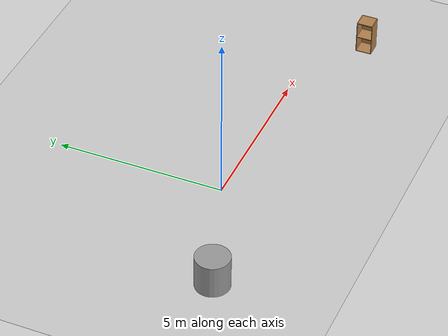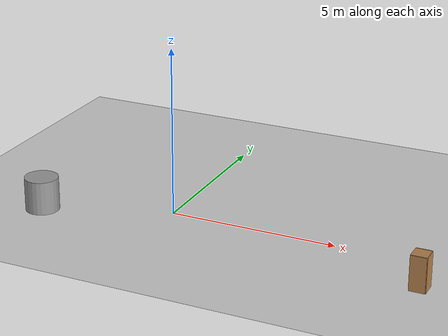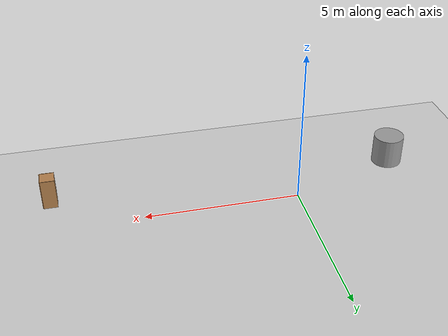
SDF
<sdf version="1.6">
 <world name="default">
  <light name="sun" type="directional">
   <pose>0 0 10 0 -0 0</pose>
   <diffuse>0.8 0.8 0.8 1</diffuse>
   <specular>0.2 0.2 0.2 1</specular>
   <attenuation>
    <range>1000</range>
    <constant>0.9</constant>
    <linear>0.01</linear>
    <quadratic>0.001</quadratic>
   </attenuation>
   <direction>-0.5 0.1 -0.9</direction>
  </light>
  <model name="ground_plane">
   <static>1</static>
   <link name="link">
    <collision name="collision">
     <geometry><plane><normal>0 0 1</normal><size>100 100</size></plane></geometry>
     <surface><friction><ode><mu>100</mu><mu2>50</mu2></ode></friction></surface>
    </collision>
    <visual name="visual">
     <cast_shadows>0</cast_shadows>
     <geometry><plane><normal>0 0 1</normal><size>100 100</size></plane></geometry>
     <material>
      <script><uri>file://media/materials/scripts/gazebo.material</uri><name>Gazebo/Grey</name></script>
     </material>
    </visual>
   </link>
  </model>
  <gravity>0 0 -9.8</gravity>
  <magnetic_field>6e-06 2.3e-05 -4.2e-05</magnetic_field>
  <atmosphere type="adiabatic"/>
  <physics name="default_physics" default="0" type="ode">
   <max_step_size>0.001</max_step_size>
   <real_time_factor>1</real_time_factor>
   <real_time_update_rate>1000</real_time_update_rate>
  </physics>
  <scene><ambient>0.4 0.4 0.4 1</ambient><background>0.7 0.7 0.7 1</background><shadows>1</shadows></scene>
  <spherical_coordinates>
   <surface_model>EARTH_WGS84</surface_model>
   <latitude_deg>0</latitude_deg>
   <longitude_deg>0</longitude_deg>
   <elevation>0</elevation>
   <heading_deg>0</heading_deg>
  </spherical_coordinates>
  <model name="unit_cylinder">
   <pose>-3.62281 -1.30603 0.499993 -3e-06 -3e-06 0</pose>
   <link name="link">
    <inertial>
     <mass>1</mass>
     <inertia><ixx>0.145833</ixx><ixy>0</ixy><ixz>0</ixz><iyy>0.145833</iyy><iyz>0</iyz><izz>0.125</izz></inertia>
    </inertial>
    <collision name="collision">
     <geometry><cylinder><radius>0.5</radius><length>1</length></cylinder></geometry>
    </collision>
    <visual name="visual">
     <geometry><cylinder><radius>0.5</radius><length>1</length></cylinder></geometry>
     <material>
      <script><name>Gazebo/Grey</name><uri>file://media/materials/scripts/gazebo.material</uri></script>
     </material>
    </visual>
   </link>
  </model>
  <model name="cabinet">
   <static>1</static>
   <link name="cabinet_bottom_plate">
    <inertial>
     <pose>0 0 -1 0 -0 0</pose>
     <inertia><ixx>2.05</ixx><ixy>0</ixy><ixz>0</ixz><iyy>2.05</iyy><iyz>0</iyz><izz>2.05</izz></inertia>
     <mass>25</mass>
    </inertial>
    <collision name="cabinet_bottom_plate_geom">
     <pose>0 0 0.01 0 -0 0</pose>
     <geometry><box><size>0.45 0.45 0.02</size></box></geometry>
    </collision>
    <visual name="cabinet_bottom_plate_geom_visual">
     <pose>0 0 0.01 0 -0 0</pose>
     <geometry><box><size>0.45 0.45 0.02</size></box></geometry>
     <material>
      <script><uri>file://media/materials/scripts/gazebo.material</uri><name>Gazebo/Wood</name></script>
     </material>
    </visual>
    <collision name="cabinet_bottom_plate_geom_cabinet_back_plate">
     <pose>0.235 0 0.51 0 -0 0</pose>
     <geometry><box><size>0.02 0.45 1.02</size></box></geometry>
    </collision>
    <visual name="cabinet_bottom_plate_geom_cabinet_back_plate_visual">
     <pose>0.235 0 0.51 0 -0 0</pose>
     <geometry><box><size>0.02 0.45 1.02</size></box></geometry>
     <material>
      <script><uri>file://media/materials/scripts/gazebo.material</uri><name>Gazebo/Wood</name></script>
     </material>
    </visual>
    <collision name="cabinet_bottom_plate_geom_cabinet_left_plate">
     <pose>0 0.235 0.51 0 -0 0</pose>
     <geometry><box><size>0.45 0.02 1.02</size></box></geometry>
    </collision>
    <visual name="cabinet_bottom_plate_geom_cabinet_left_plate_visual">
     <pose>0 0.235 0.51 0 -0 0</pose>
     <geometry><box><size>0.45 0.02 1.02</size></box></geometry>
     <material>
      <script><uri>file://media/materials/scripts/gazebo.material</uri><name>Gazebo/Wood</name></script>
     </material>
    </visual>
    <collision name="cabinet_bottom_plate_geom_cabinet_middle_plate">
     <pose>0 0 0.51 0 -0 0</pose>
     <geometry><box><size>0.45 0.45 0.02</size></box></geometry>
    </collision>
    <visual name="cabinet_bottom_plate_geom_cabinet_middle_plate_visual">
     <pose>0 0 0.51 0 -0 0</pose>
     <geometry><box><size>0.45 0.45 0.02</size></box></geometry>
     <material>
      <script><uri>file://media/materials/scripts/gazebo.material</uri><name>Gazebo/Wood</name></script>
     </material>
    </visual>
    <collision name="cabinet_bottom_plate_geom_cabinet_right_plate">
     <pose>0 -0.235 0.51 0 -0 0</pose>
     <geometry><box><size>0.45 0.02 1.02</size></box></geometry>
    </collision>
    <visual name="cabinet_bottom_plate_geom_cabinet_right_plate_visual">
     <pose>0 -0.235 0.51 0 -0 0</pose>
     <geometry><box><size>0.45 0.02 1.02</size></box></geometry>
     <material>
      <script><uri>file://media/materials/scripts/gazebo.material</uri><name>Gazebo/Wood</name></script>
     </material>
    </visual>
    <collision name="cabinet_bottom_plate_geom_cabinet_top_plate">
     <pose>0 0 1.01 0 -0 0</pose>
     <geometry><box><size>0.45 0.45 0.02</size></box></geometry>
    </collision>
    <visual name="cabinet_bottom_plate_geom_cabinet_top_plate_visual">
     <pose>0 0 1.01 0 -0 0</pose>
     <geometry><box><size>0.45 0.45 0.02</size></box></geometry>
     <material>
      <script><uri>file://media/materials/scripts/gazebo.material</uri><name>Gazebo/Wood</name></script>
     </material>
    </visual>
   </link>
   <pose>7.8373 -1.40291 0 0 -0 0</pose>
  </model>
 </world>
</sdf>
